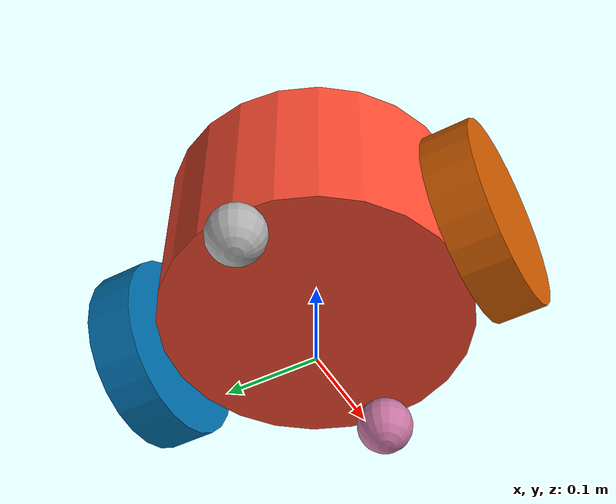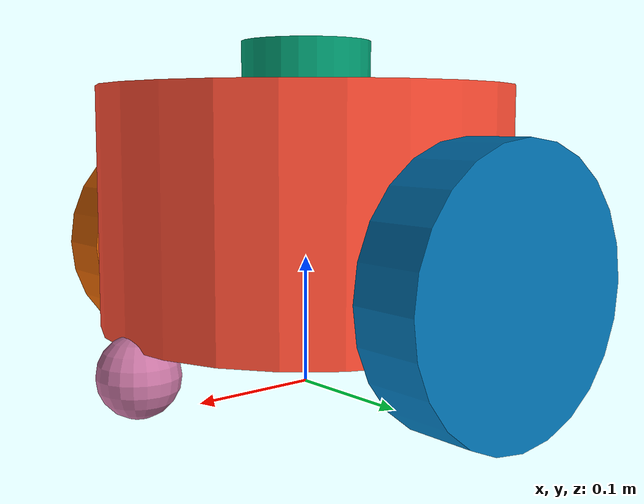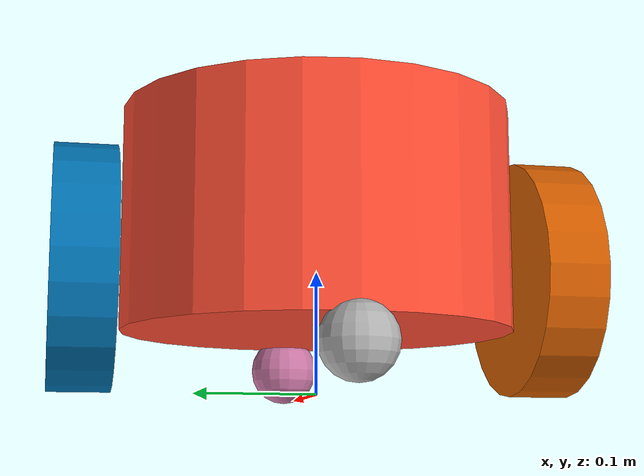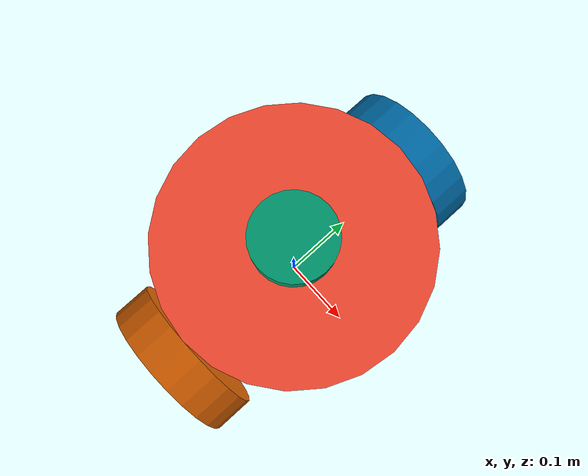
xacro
<?xml version="1.0"?>
<robot name="hnn_diff_robot" xmlns:xacro="http://www.ros.org/wiki/xacro">
  <xacro:arg name="ros2_ctrl_yaml" default=""/>
  <xacro:arg name="use_gazebo" default="false"/>

  <material name="white">
    <color rgba="1.0 1.0 1.0 1.0"/>
  </material>

  <material name="orange">
    <color rgba="1.0 0.3 0.2 1.0"/>
  </material>

  <link name="base_footprint">
    <visual>
      <origin xyz="0 0 0.1415" rpy="0 0 0"/>
      <geometry><cylinder radius="0.16" length="0.183"/></geometry>
      <material name="orange"/>
    </visual>
    <collision>
      <origin xyz="0 0 0.1415" rpy="0 0 0"/>
      <geometry><cylinder radius="0.16" length="0.183"/></geometry>
    </collision>
  </link>

  <link name="base_link">
    <inertial>
      <origin xyz="0 0 0" rpy="0 0 0"/>
      <mass value="0.001"/>
      <inertia ixx="0.000001" ixy="0" ixz="0" iyy="0.000001" iyz="0" izz="0.000001"/>
    </inertial>
  </link>

  <joint name="base_joint" type="fixed">
    <parent link="base_footprint"/>
    <child link="base_link"/>
    <origin xyz="0 0 0" rpy="0 0 0"/>
  </joint>

  <link name="lidar_link">
    <inertial>
      <origin xyz="0 0 0" rpy="0 0 0"/>
      <mass value="0.114"/>
      <inertia ixx="0.001" ixy="0" ixz="0" iyy="0.001" iyz="0" izz="0.001"/>
    </inertial>
    <visual>
      <origin xyz="0 0 0" rpy="0 0 1.5708"/>
      <geometry><cylinder radius="0.05" length="0.055"/></geometry>
    </visual>
    <collision>
      <origin xyz="0 0 0" rpy="0 0 1.5708"/>
      <geometry><cylinder radius="0.1" length="0.055"/></geometry>
    </collision>
  </link>

  <joint name="lidar_joint" type="fixed">
    <parent link="base_link"/>
    <child link="lidar_link"/>
    <origin xyz="0 0 0.24" rpy="0 0 0"/>
  </joint>

  <link name="imu_link">
    <inertial>
      <origin xyz="0 0 0" rpy="0 0 0"/>
      <mass value="0.000001"/>
      <inertia ixx="1e-9" ixy="0" ixz="0" iyy="1e-9" iyz="0" izz="1e-9"/>
    </inertial>
  </link>

  <joint name="imu_joint" type="fixed">
    <parent link="base_link"/>
    <child link="imu_link"/>
    <origin xyz="0 0 0.1" rpy="0 0 0"/>
  </joint>

  <link name="left_wheel">
    <inertial>
      <origin xyz="0 0 0" rpy="0 0 0"/>
      <mass value="0.5"/>
      <inertia ixx="0.0015" ixy="0" ixz="0" iyy="0.0015" iyz="0" izz="0.00242"/>
    </inertial>
    <collision>
      <origin xyz="0 0 0" rpy="0 0 0"/>
      <geometry><cylinder length="0.05" radius="0.0985"/></geometry>
    </collision>
    <visual>
      <origin xyz="0 0 0" rpy="0 0 0"/>
      <geometry><cylinder length="0.05" radius="0.0985"/></geometry>
    </visual>
  </link>

  <joint name="left_wheel_joint" type="continuous">
    <parent link="base_link"/>
    <child link="left_wheel"/>
    <origin xyz="0 0.19 0.0985" rpy="-1.5708 0 0"/>
    <axis xyz="0 0 1"/>
  </joint>

  <link name="right_wheel">
    <inertial>
      <origin xyz="0 0 0" rpy="0 0 0"/>
      <mass value="0.5"/>
      <inertia ixx="0.0015" ixy="0" ixz="0" iyy="0.0015" iyz="0" izz="0.00242"/>
    </inertial>
    <collision>
      <origin xyz="0 0 0" rpy="0 0 0"/>
      <geometry><cylinder length="0.05" radius="0.0985"/></geometry>
    </collision>
    <visual>
      <origin xyz="0 0 0" rpy="0 0 0"/>
      <geometry><cylinder length="0.05" radius="0.0985"/></geometry>
    </visual>
  </link>

  <joint name="right_wheel_joint" type="continuous">
    <parent link="base_link"/>
    <child link="right_wheel"/>
    <origin xyz="0 -0.19 0.0985" rpy="-1.5708 0 0"/>
    <axis xyz="0 0 1"/>
  </joint>

  <link name="caster_front">
    <inertial>
      <origin xyz="0 0 0" rpy="0 0 0"/>
      <mass value="0.001"/>
      <inertia ixx="0.000036" ixy="0" ixz="0" iyy="0.000036" iyz="0" izz="0.000036"/>
    </inertial>
    <collision>
      <origin xyz="0 0 0" rpy="0 0 0"/>
      <geometry><sphere radius="0.03"/></geometry>
    </collision>
    <visual>
      <origin xyz="0 0 0" rpy="0 0 0"/>
      <geometry><sphere radius="0.03"/></geometry>
    </visual>
  </link>

  <joint name="caster_front_joint" type="fixed">
    <parent link="base_link"/>
    <child link="caster_front"/>
    <origin xyz="0.15 0 0.03" rpy="0 0 0"/>
  </joint>

  <link name="caster_rear">
    <inertial>
      <origin xyz="0 0 0" rpy="0 0 0"/>
      <mass value="0.001"/>
      <inertia ixx="0.000036" ixy="0" ixz="0" iyy="0.000036" iyz="0" izz="0.000036"/>
    </inertial>
    <collision>
      <origin xyz="0 0 0" rpy="0 0 0"/>
      <geometry><sphere radius="0.03"/></geometry>
    </collision>
    <visual>
      <origin xyz="0 0 0" rpy="0 0 0"/>
      <geometry><sphere radius="0.03"/></geometry>
    </visual>
  </link>

  <joint name="caster_rear_joint" type="fixed">
    <parent link="base_link"/>
    <child link="caster_rear"/>
    <origin xyz="-0.15 0 0.03" rpy="0 0 0"/>
  </joint>

  <!-- SENSOR PLUGINS SETUP -->
  <gazebo reference="lidar_link">
    <sensor type="gpu_lidar" name="lidar_2d">
      <gz_frame_id>lidar_link</gz_frame_id>
      <topic>/scan</topic>
      <update_rate>10</update_rate>
      <pose>0 0 0 0 0 0</pose>
      <ray>
        <scan>
          <horizontal>
            <samples>720</samples>
            <resolution>1</resolution>
            <min_angle>-3.14159</min_angle>
            <max_angle>3.14159</max_angle>
          </horizontal>
          <vertical>
            <samples>1</samples>
            <resolution>1</resolution>
            <min_angle>0</min_angle>
            <max_angle>0</max_angle>
          </vertical>
        </scan>
        <range>
          <min>0.05</min>
          <max>10.0</max>
          <resolution>0.01</resolution>
        </range>
        <noise>
          <type>gaussian</type>
          <mean>0.0</mean>
          <stddev>0.01</stddev>
        </noise>
      </ray>
      <always_on>1</always_on>
      <visualize>true</visualize>
    </sensor>
  </gazebo>

  <gazebo reference="imu_link">
    <sensor type="imu" name="imu_sensor">
      <gz_frame_id>imu_link</gz_frame_id>
      <topic>/imu</topic>
      <update_rate>100</update_rate>
      <always_on>true</always_on>
      <visualize>true</visualize>
    </sensor>
  </gazebo>

  <xacro:include filename="$(find hnn_robot_description)/xacro/ros2_control.urdf.xacro"/>

  <xacro:arg name="robot_type" default="hnn_diff_robot"/>

  <xacro:ros2_control_and_gazebo_plugin
    left_joint="left_wheel_joint"
    right_joint="right_wheel_joint"
    ros2_ctrl_yaml_path="$(arg ros2_ctrl_yaml)"
    use_gazebo="$(arg use_gazebo)"
    robot_type="$(arg robot_type)"
  />

</robot>
